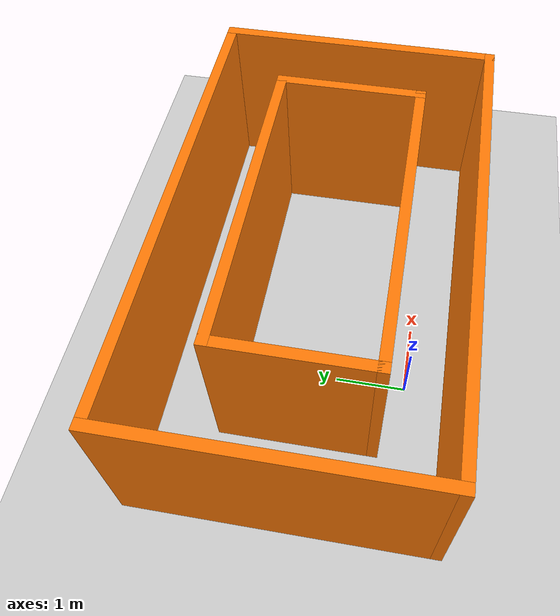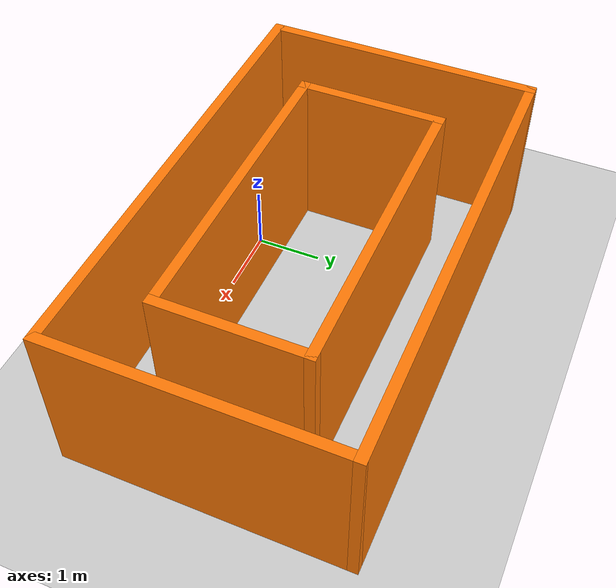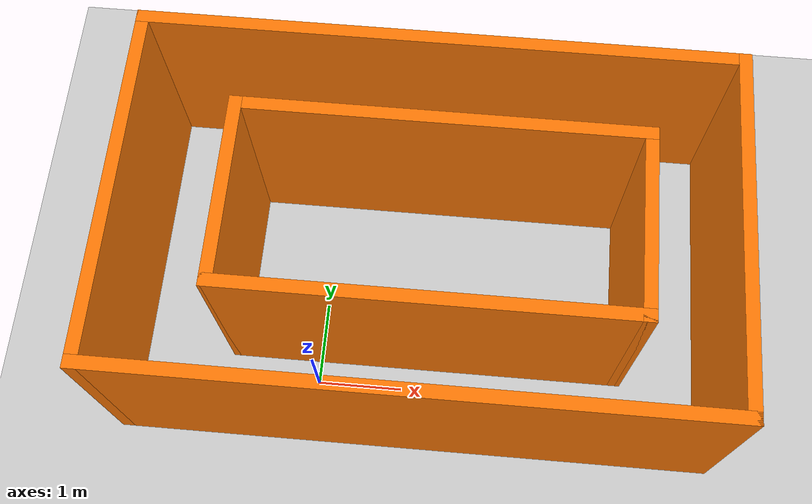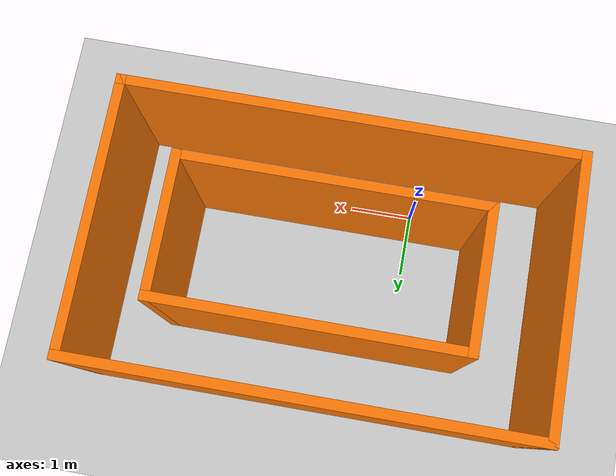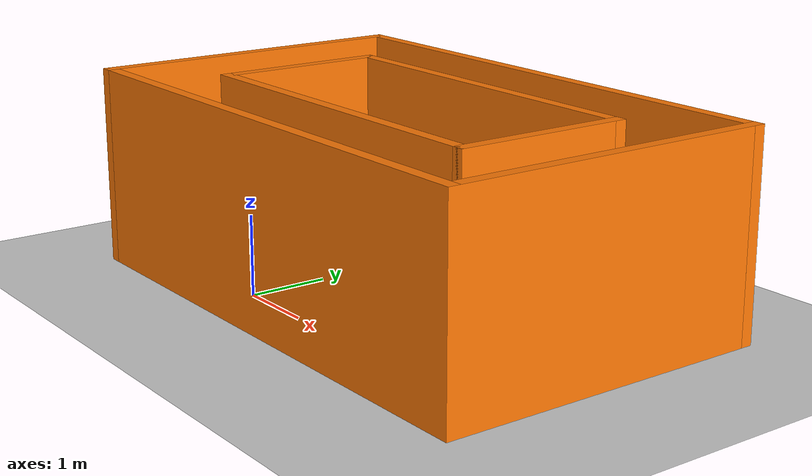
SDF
<sdf version="1.7">
 <world name="default">
  <light name="sun" type="directional">
   <pose>0 0 10 0 -0 0</pose>
   <diffuse>0.8 0.8 0.8 1</diffuse>
   <specular>0.2 0.2 0.2 1</specular>
   <attenuation>
    <range>1000</range>
    <constant>0.9</constant>
    <linear>0.01</linear>
    <quadratic>0.001</quadratic>
   </attenuation>
   <direction>-0.5 0.1 -0.9</direction>
   <spot><inner_angle>0</inner_angle><outer_angle>0</outer_angle><falloff>0</falloff></spot>
  </light>
  <model name="ground_plane">
   <static>1</static>
   <link name="link">
    <collision name="collision">
     <geometry><plane><normal>0 0 1</normal><size>100 100</size></plane></geometry>
     <surface>
      <contact><collide_bitmask>65535</collide_bitmask></contact>
      <friction><ode><mu>100</mu><mu2>50</mu2></ode></friction>
     </surface>
    </collision>
    <visual name="visual">
     <cast_shadows>0</cast_shadows>
     <geometry><plane><normal>0 0 1</normal><size>100 100</size></plane></geometry>
     <material>
      <script><uri>file://media/materials/scripts/gazebo.material</uri><name>Gazebo/Grey</name></script>
     </material>
    </visual>
   </link>
  </model>
  <gravity>0 0 -9.8</gravity>
  <magnetic_field>6e-06 2.3e-05 -4.2e-05</magnetic_field>
  <atmosphere type="adiabatic"/>
  <physics type="ode">
   <max_step_size>0.001</max_step_size>
   <real_time_factor>1</real_time_factor>
   <real_time_update_rate>1000</real_time_update_rate>
  </physics>
  <scene><ambient>0.4 0.4 0.4 1</ambient><background>0.7 0.7 0.7 1</background><shadows>1</shadows></scene>
  <spherical_coordinates>
   <surface_model>EARTH_WGS84</surface_model>
   <latitude_deg>0</latitude_deg>
   <longitude_deg>0</longitude_deg>
   <elevation>0</elevation>
   <heading_deg>0</heading_deg>
  </spherical_coordinates>
  <model name="new_pip_env">
   <pose>1.195 1.41 0 0 -0 0</pose>
   <link name="Wall_17">
    <collision name="Wall_17_Collision">
     <geometry><box><size>2.25 0.15 2.5</size></box></geometry>
     <pose>0 0 1.25 0 -0 0</pose>
    </collision>
    <visual name="Wall_17_Visual">
     <pose>0 0 1.25 0 -0 0</pose>
     <geometry><box><size>2.25 0.15 2.5</size></box></geometry>
     <material>
      <script><uri>file://media/materials/scripts/gazebo.material</uri><name>Gazebo/Grey</name></script>
      <ambient>0.996078 0.47451 0.0196078 1</ambient>
     </material>
     <meta><layer>0</layer></meta>
    </visual>
    <pose>2.38915 -0.0177 0 0 -0 1.5708</pose>
   </link>
   <link name="Wall_18">
    <collision name="Wall_18_Collision">
     <geometry><box><size>4.75 0.15 2.5</size></box></geometry>
     <pose>0 0 1.25 0 -0 0</pose>
    </collision>
    <visual name="Wall_18_Visual">
     <pose>0 0 1.25 0 -0 0</pose>
     <geometry><box><size>4.75 0.15 2.5</size></box></geometry>
     <material>
      <script><uri>file://media/materials/scripts/gazebo.material</uri><name>Gazebo/Grey</name></script>
      <ambient>0.996078 0.47451 0.0196078 1</ambient>
     </material>
     <meta><layer>0</layer></meta>
    </visual>
    <pose>0.08915 1.0323 0 0 -0 3.14159</pose>
   </link>
   <link name="Wall_21">
    <collision name="Wall_21_Collision">
     <geometry><box><size>4.75 0.15 2.5</size></box></geometry>
     <pose>0 0 1.25 0 -0 0</pose>
    </collision>
    <visual name="Wall_21_Visual">
     <pose>0 0 1.25 0 -0 0</pose>
     <geometry><box><size>4.75 0.15 2.5</size></box></geometry>
     <material>
      <script><uri>file://media/materials/scripts/gazebo.material</uri><name>Gazebo/Grey</name></script>
      <ambient>0.996078 0.47451 0.0196078 1</ambient>
     </material>
     <meta><layer>0</layer></meta>
    </visual>
    <pose>0.08915 -1.0677 0 0 -0 0</pose>
   </link>
   <link name="Wall_23">
    <collision name="Wall_23_Collision">
     <geometry><box><size>2.25 0.15 2.5</size></box></geometry>
     <pose>0 0 1.25 0 -0 0</pose>
    </collision>
    <visual name="Wall_23_Visual">
     <pose>0 0 1.25 0 -0 0</pose>
     <geometry><box><size>2.25 0.15 2.5</size></box></geometry>
     <material>
      <script><uri>file://media/materials/scripts/gazebo.material</uri><name>Gazebo/Grey</name></script>
      <ambient>0.996078 0.47451 0.0196078 1</ambient>
     </material>
     <meta><layer>0</layer></meta>
    </visual>
    <pose>-2.21085 -0.0177 0 0 -0 1.5708</pose>
   </link>
   <link name="Wall_29">
    <collision name="Wall_29_Collision">
     <geometry><box><size>7 0.15 2.5</size></box></geometry>
     <pose>0 0 1.25 0 -0 0</pose>
    </collision>
    <visual name="Wall_29_Visual">
     <pose>0 0 1.25 0 -0 0</pose>
     <geometry><box><size>7 0.15 2.5</size></box></geometry>
     <material>
      <script><uri>file://media/materials/scripts/gazebo.material</uri><name>Gazebo/Grey</name></script>
      <ambient>0.996078 0.47451 0.0196078 1</ambient>
     </material>
     <meta><layer>0</layer></meta>
    </visual>
    <pose>0 -2.05 0 0 -0 3.14159</pose>
   </link>
   <link name="Wall_30">
    <collision name="Wall_30_Collision">
     <geometry><box><size>4.25 0.15 2.5</size></box></geometry>
     <pose>0 0 1.25 0 -0 0</pose>
    </collision>
    <visual name="Wall_30_Visual">
     <pose>0 0 1.25 0 -0 0</pose>
     <geometry><box><size>4.25 0.15 2.5</size></box></geometry>
     <material>
      <script><uri>file://media/materials/scripts/gazebo.material</uri><name>Gazebo/Grey</name></script>
      <ambient>0.996078 0.47451 0.0196078 1</ambient>
     </material>
     <meta><layer>0</layer></meta>
    </visual>
    <pose>-3.425 -0 0 0 -0 1.5708</pose>
   </link>
   <link name="Wall_31">
    <collision name="Wall_31_Collision">
     <geometry><box><size>7 0.15 2.5</size></box></geometry>
     <pose>0 0 1.25 0 -0 0</pose>
    </collision>
    <visual name="Wall_31_Visual">
     <pose>0 0 1.25 0 -0 0</pose>
     <geometry><box><size>7 0.15 2.5</size></box></geometry>
     <material>
      <script><uri>file://media/materials/scripts/gazebo.material</uri><name>Gazebo/Grey</name></script>
      <ambient>0.996078 0.47451 0.0196078 1</ambient>
     </material>
     <meta><layer>0</layer></meta>
    </visual>
    <pose>0 2.05 0 0 -0 0</pose>
   </link>
   <link name="Wall_9">
    <collision name="Wall_9_Collision">
     <geometry><box><size>4.25 0.15 2.5</size></box></geometry>
     <pose>0 0 1.25 0 -0 0</pose>
    </collision>
    <visual name="Wall_9_Visual">
     <pose>0 0 1.25 0 -0 0</pose>
     <geometry><box><size>4.25 0.15 2.5</size></box></geometry>
     <material>
      <script><uri>file://media/materials/scripts/gazebo.material</uri><name>Gazebo/Grey</name></script>
      <ambient>0.996078 0.47451 0.0196078 1</ambient>
     </material>
     <meta><layer>0</layer></meta>
    </visual>
    <pose>3.425 -0 0 0 -0 1.5708</pose>
   </link>
   <static>1</static>
  </model>
 </world>
</sdf>
